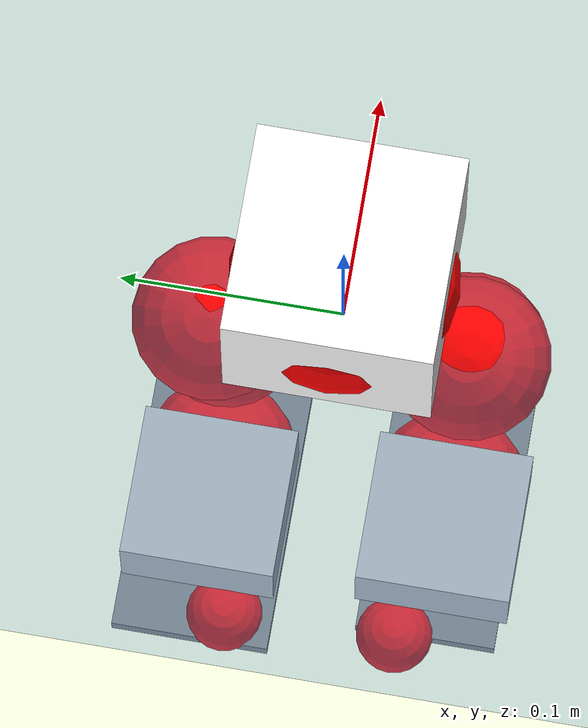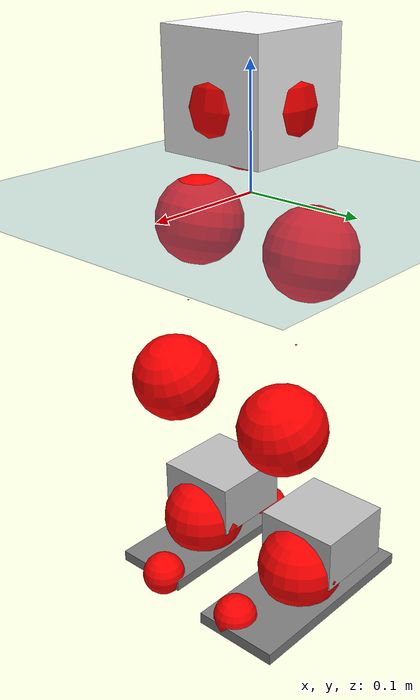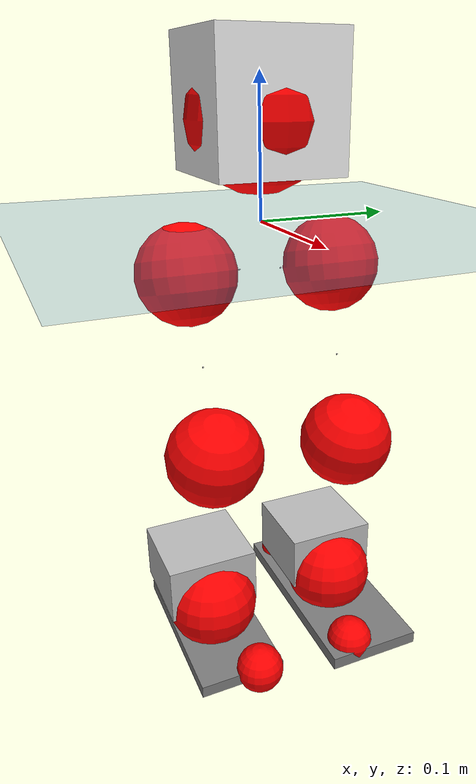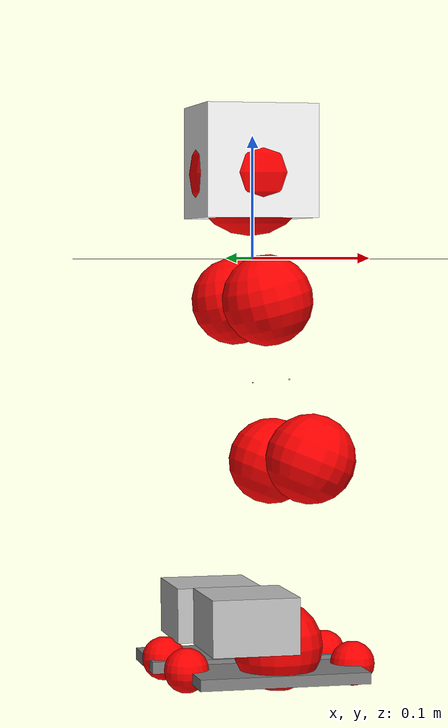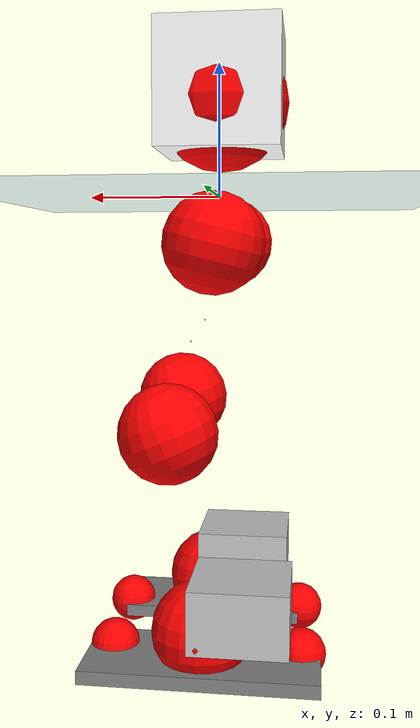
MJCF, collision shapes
<mujoco model="pi_12dof_release_v1">
  <compiler angle="radian" assetdir="assets" balanceinertia="true" inertiafromgeom="false"/>

  <option timestep="0.005" density="1.2" viscosity="2e-05"/>

  <size nkey="1"/>

  <visual>
    <quality shadowsize="8192"/>
    <map shadowclip="0.5"/>
  </visual>

  <default>
    <default class="/">
      <joint armature="0.01" damping="0.01" frictionloss="0.01"/>
      <geom contype="0" conaffinity="0" group="1" solref="-1000 -80"/>
      <site size="0.01 0.005 0.005" group="5"/>
      <general forcelimited="true" biastype="affine" gainprm="20" biasprm="0 -20 -0.5"/>
      <default class="foot">
        <geom size="0.0845 0.036 0.005" type="box" condim="6" group="4" priority="1" friction="0.9 0.2 0.2" solimp="0.015 1 0.005"/>
      </default>
      <default class="reward_collision_sphere">
        <geom group="5" rgba="1 0 0 1"/>
      </default>
    </default>
  </default>

  <asset>
    <texture type="skybox" colorspace="auto" name="//unnamed_texture_0" builtin="gradient" rgb1="0.95 0.95 0.95" rgb2="0.95 0.95 0.95" width="100" height="600"/>
    <texture type="2d" colorspace="auto" name="texplane" builtin="checker" rgb1="0.345 0.575 0.748" rgb2="0.345 0.575 0.748" markrgb="1 1 1" width="512" height="512"/>
    <material name="MatPlane" class="/" texture="texplane" texuniform="true" texrepeat="2 2" specular="0.9"/>
    <mesh name="baselink_1" class="/" file="baselink_1.STL"/>
    <mesh name="r_hip_pitch_link" class="/" file="r_hip_pitch_link.STL"/>
    <mesh name="r_hip_roll_link" class="/" file="r_hip_roll_link.STL"/>
    <mesh name="r_thigh_link" class="/" file="r_thigh_link.STL"/>
    <mesh name="r_calf_link" class="/" file="r_calf_link.STL"/>
    <mesh name="r_ankle_pitch_link" class="/" file="r_ankle_pitch_link.STL"/>
    <mesh name="r_ankle_roll_link" class="/" file="r_ankle_roll_link.STL"/>
    <mesh name="l_hip_pitch_link" class="/" file="l_hip_pitch_link.STL"/>
    <mesh name="l_hip_roll_link" class="/" file="l_hip_roll_link.STL"/>
    <mesh name="l_thigh_link" class="/" file="l_thigh_link.STL"/>
    <mesh name="l_calf_link" class="/" file="l_calf_link.STL"/>
    <mesh name="l_ankle_pitch_link" class="/" file="l_ankle_pitch_link.STL"/>
    <mesh name="l_ankle_roll_link" class="/" file="l_ankle_roll_link.STL"/>
  </asset>

  <worldbody>
    <geom name="floor" class="/" size="100 100 0.125" type="plane" group="0" material="MatPlane"/>
    <light name="toplight_shadow" class="/" pos="0 0 5" dir="0.0990148 0.0990148 -0.990148" type="directional" ambient="0.04 0.04 0.04" diffuse="0.55 0.55 0.55" specular="0.12 0.12 0.12"/>
    <light name="toplight_fill" class="/" pos="0 0 5" dir="0.0990148 0.0990148 -0.990148" type="directional" castshadow="false" ambient="0.04 0.04 0.04" diffuse="0.3 0.3 0.3" specular="0.08 0.08 0.08"/>
    <body name="trunk" pos="-0.0019892 -0.000693392 -0.000629677" quat="1 0.000233545 -0.000442511 -0.000572655">
      <inertial pos="0.00159125 -0.000120033 0.040237" quat="0.69065 0.00112571 0.00366856 0.723179" mass="1.68196" diaginertia="0.0119206 0.00191849 0.00413812"/>
      <joint name="//unnamed_joint_0" type="free"/>
      <geom name="//unnamed_geom_1" class="/" type="mesh" density="0" rgba="1 1 1 1" mesh="baselink_1"/>
      <geom name="//unnamed_geom_2" class="/" size="0.0460882 0.0460882 0.0460882" pos="0 0 0.0796172" type="box" rgba="1 1 1 1"/>
      <geom name="//unnamed_geom_3" class="reward_collision_sphere" size="0.050697" pos="0 0 0.0696651"/>
      <site name="imu" class="/" pos="0.00495602 -0.0128136 0.00239511" size="0.00921764"/>
      <camera name="track" class="/" pos="0 -1.46765 0" quat="0.707107 0.707107 0 0" mode="trackcom"/>
      <camera name="ego_camera" class="/" pos="0.0777187 0 0.179139" quat="-0.5 -0.5 0.5 0.5"/>
      <body name="r_hip_pitch_link" pos="0.000533825 -0.0160638 -0.0333106" quat="0.992121 0.00111123 -0.125281 0.000272716">
        <inertial pos="0.00017167 -0.0413616 0.000678729" quat="-0.0102872 0.705814 -0.033953 0.707509" mass="0.299178" diaginertia="0.000134083 2.14822e-05 8.45819e-05"/>
        <joint name="r_hip_pitch_joint" class="/" pos="0 0 0" axis="-0.00565841 -0.999984 0.000561045" range="-1.73758 1.24847" armature="0.00882808" damping="0.00473429" frictionloss="0.00878391"/>
        <geom name="//unnamed_geom_4" class="/" type="mesh" density="0" rgba="0.75294 0.75294 0.75294 1" mesh="r_hip_pitch_link"/>
        <geom name="//unnamed_geom_5" class="/" size="0.000460882 0.000460882 0.000460882" type="box" rgba="0.75294 0.75294 0.75294 1"/>
        <body name="r_hip_roll_link" pos="0.0002286 -0.0403911 0.000270864" quat="1 0.000160149 -6.20294e-05 -0.000124793">
          <inertial pos="-0.00114001 -0.00288679 -0.0634324" quat="0.705888 -0.0754431 -0.0852076 0.699121" mass="0.309686" diaginertia="0.000397121 5.88495e-05 0.000124548"/>
          <joint name="r_hip_roll_joint" class="/" pos="0 0 0" axis="-0.999949 0.00945085 -0.00353858" range="-0.128912 0.551947" armature="0.00890239" damping="0.0122446" frictionloss="0.00954317"/>
          <geom name="//unnamed_geom_6" class="/" type="mesh" density="0" rgba="0.75294 0.75294 0.75294 1" mesh="r_hip_roll_link"/>
          <geom name="//unnamed_geom_7" class="/" size="0.000460882 0.000460882 0.000460882" type="box" rgba="0.75294 0.75294 0.75294 1"/>
          <geom name="//unnamed_geom_8" class="reward_collision_sphere" size="0.0368706"/>
          <body name="r_thigh_link" pos="0.002223 0.00307142 -0.0666482" quat="1 2.85514e-05 -3.76739e-05 0.000344604">
            <inertial pos="0.00120745 -0.00045335 -0.0455544" quat="0.737044 0.675845 6.35448e-05 8.54067e-07" mass="0.0916584" diaginertia="0.000153461 2.05039e-05 5.67907e-05"/>
            <joint name="r_thigh_joint" class="/" pos="0 0 0" axis="0.00570046 -0.00884392 -0.999945" stiffness="0.00852429" range="-0.319711 0.589415" armature="0.00872873" damping="0" frictionloss="0.00804292"/>
            <geom name="//unnamed_geom_9" class="/" type="mesh" density="0" rgba="0.75294 0.75294 0.75294 1" mesh="r_thigh_link"/>
            <geom name="//unnamed_geom_10" class="/" size="0.000460882 0.000460882 0.000460882" type="box" rgba="0.75294 0.75294 0.75294 1"/>
            <body name="r_calf_link" pos="0.0013701 6.50477e-05 -0.0673406" quat="0.947651 7.41329e-07 0.319309 -7.10496e-07">
              <inertial pos="0.00055513 -0.00233838 -0.0696408" quat="0.999947 -0.00500515 0.00402784 -0.00808918" mass="0.660258" diaginertia="0.00430838 0.000769124 0.000174011"/>
              <joint name="r_calf_joint" class="/" pos="0 0 0" axis="-0.00221168 -0.999966 -0.00794339" range="-1.59668 0.645858" armature="0.00807522" damping="0.0063509" frictionloss="0.00900898"/>
              <geom name="//unnamed_geom_11" class="/" type="mesh" density="0" rgba="0.75294 0.75294 0.75294 1" mesh="r_calf_link"/>
              <geom name="//unnamed_geom_12" class="/" size="0.000460882 0.000460882 0.000460882" type="box" rgba="0.75294 0.75294 0.75294 1"/>
              <geom name="//unnamed_geom_13" class="reward_collision_sphere" size="0.0368706"/>
              <body name="r_ankle_pitch_link" pos="0.00143215 0.00107423 -0.141167" quat="0.980108 0.000117304 -0.198465 0.000252833">
                <inertial pos="0.00514879 0.00262596 -0.00289771" quat="0.00184592 0.712442 0.00778041 0.701685" mass="0.141006" diaginertia="0.000376352 4.88584e-05 0.000121094"/>
                <joint name="r_ankle_pitch_joint" class="/" pos="0 0 0" axis="0.00282689 -0.999996 0.000593181" range="-1.30403 0.553674" armature="0.00917253" damping="0.00698024" frictionloss="0.0104233"/>
                <geom name="//unnamed_geom_14" class="/" type="mesh" density="0" rgba="0.75294 0.75294 0.75294 1" mesh="r_ankle_pitch_link"/>
                <geom name="//unnamed_geom_15" class="/" size="0.0359488 0.0368706 0.0230441" type="box" rgba="0.75294 0.75294 0.75294 1"/>
                <body name="r_ankle_roll_link" pos="0.0780367 0.000939841 -0.00125964" quat="1 5.78243e-06 -0.000282262 -0.000106593">
                  <inertial pos="-0.0253312 0.000767637 -0.0119432" quat="0.561137 0.426768 0.434089 0.560857" mass="0.382278" diaginertia="0.00130847 0.000219506 0.000258918"/>
                  <joint name="r_ankle_roll_joint" class="/" pos="0 0 0" axis="-0.999899 0.0108718 0.00915817" range="-0.117445 0.098559" armature="0.00795604" damping="0.0203576" frictionloss="0.00876877"/>
                  <geom name="//unnamed_geom_16" class="/" type="mesh" density="0" rgba="0.75294 0.75294 0.75294 1" mesh="r_ankle_roll_link"/>
                  <geom name="//unnamed_geom_17" class="/" type="mesh" rgba="0.75294 0.75294 0.75294 1" mesh="r_ankle_roll_link"/>
                  <geom name="right_foot" class="foot" size="0.0703855 0.0337212 0.00471743" pos="-0.0528487 0 -0.0437895"/>
                  <geom name="//unnamed_geom_19" class="reward_collision_sphere" size="0.0368706" pos="-0.0518125 0 -0.0199043"/>
                  <geom name="//unnamed_geom_20" class="reward_collision_sphere" size="0.0184353" pos="0.0155437 0.0146765 -0.0398086"/>
                  <geom name="//unnamed_geom_21" class="reward_collision_sphere" size="0.0184353" pos="-0.12435 0.0146765 -0.0398086"/>
                  <site name="right_foot" class="foot" pos="-0.0528487 0 -0.0437895" size="0.00921764"/>
                </body>
              </body>
            </body>
          </body>
        </body>
      </body>
      <body name="l_hip_pitch_link" pos="0.000621083 0.0167274 -0.0352832" quat="0.992194 -0.000134662 -0.124707 -8.51407e-05">
        <inertial pos="0.00063826 0.0397483 -0.00284177" quat="-0.0390184 0.707156 0.0314241 0.705281" mass="0.317231" diaginertia="0.000159235 2.19995e-05 9.90418e-05"/>
        <joint name="l_hip_pitch_joint" class="/" pos="0 0 0" axis="0.00139625 0.999998 0.00158091" range="-1.2037 1.75515" armature="0.0102834" damping="0.00917221" frictionloss="0.00957549"/>
        <geom name="//unnamed_geom_22" class="/" type="mesh" density="0" rgba="0.75294 0.75294 0.75294 1" mesh="l_hip_pitch_link"/>
        <geom name="//unnamed_geom_23" class="/" size="0.000460882 0.000460882 0.000460882" type="box" rgba="0.75294 0.75294 0.75294 1"/>
        <body name="l_hip_roll_link" pos="-0.000596427 0.0422138 -0.000458318" quat="1 -4.08152e-05 -0.000257703 0.000380103">
          <inertial pos="-0.00411377 -0.00143978 -0.0632119" quat="0.703338 -0.0866055 -0.07946 0.701071" mass="0.307761" diaginertia="0.0003844 5.94182e-05 0.000121148"/>
          <joint name="l_hip_roll_joint" class="/" pos="0 0 0" axis="-0.999998 0.001101 -0.00175593" range="-0.554297 0.163539" armature="0.00889163" damping="0" frictionloss="0.00920209"/>
          <geom name="//unnamed_geom_24" class="/" type="mesh" density="0" rgba="0.75294 0.75294 0.75294 1" mesh="l_hip_roll_link"/>
          <geom name="//unnamed_geom_25" class="/" size="0.000460882 0.000460882 0.000460882" type="box" rgba="0.75294 0.75294 0.75294 1"/>
          <geom name="//unnamed_geom_26" class="reward_collision_sphere" size="0.0368706"/>
          <body name="l_thigh_link" pos="-0.00194152 -0.000328412 -0.0712754" quat="1 9.55458e-05 -5.47436e-05 -0.000107839">
            <inertial pos="0.00132742 -0.00292202 -0.0455605" quat="0.666976 0.745069 -0.00369481 0.00146119" mass="0.0855233" diaginertia="0.000149047 2.00128e-05 5.67145e-05"/>
            <joint name="l_thigh_joint" class="/" pos="0 0 0" axis="0.000877968 -0.000922078 -0.999999" range="-0.602782 0.281807" armature="0.00900649" damping="0.00118531" frictionloss="0.00944377"/>
            <geom name="//unnamed_geom_27" class="/" type="mesh" density="0" rgba="0.75294 0.75294 0.75294 1" mesh="l_thigh_link"/>
            <geom name="//unnamed_geom_28" class="/" size="0.000460882 0.000460882 0.000460882" type="box" rgba="0.75294 0.75294 0.75294 1"/>
            <body name="l_calf_link" pos="-0.000607069 0.00126326 -0.0693523" quat="0.947633 0.00016879 0.319362 -0.000238013">
              <inertial pos="0.000247405 0.00472198 -0.0719546" quat="0.999983 0.00280773 -0.000469992 0.00508027" mass="0.616996" diaginertia="0.00411393 0.000729176 0.00016493"/>
              <joint name="l_calf_joint" class="/" pos="0 0 0" axis="-0.00186464 0.999998 -0.00103766" stiffness="0.00127557" range="-0.597327 1.70661" armature="0.00924019" damping="0.00852219" frictionloss="0.00892471"/>
              <geom name="//unnamed_geom_29" class="/" type="mesh" density="0" rgba="0.75294 0.75294 0.75294 1" mesh="l_calf_link"/>
              <geom name="//unnamed_geom_30" class="/" size="0.000460882 0.000460882 0.000460882" type="box" rgba="0.75294 0.75294 0.75294 1"/>
              <geom name="//unnamed_geom_31" class="reward_collision_sphere" size="0.0368706"/>
              <body name="l_ankle_pitch_link" pos="-0.000549431 0.000791723 -0.136839" quat="0.980056 3.23462e-05 -0.198722 0.000112967">
                <inertial pos="0.00352651 0.00121658 -0.000168092" quat="-0.00194049 0.707467 0.00144161 0.706743" mass="0.129398" diaginertia="0.000357327 4.58023e-05 0.000116791"/>
                <joint name="l_ankle_pitch_joint" class="/" pos="0 0 0" axis="0.00118739 0.999999 3.6131e-05" range="-0.559114 1.31725" armature="0.00819365" damping="0.0129239" frictionloss="0.00872374"/>
                <geom name="//unnamed_geom_32" class="/" type="mesh" density="0" rgba="0.75294 0.75294 0.75294 1" mesh="l_ankle_pitch_link"/>
                <geom name="//unnamed_geom_33" class="/" size="0.0359488 0.0368706 0.0230441" type="box" rgba="0.75294 0.75294 0.75294 1"/>
                <body name="l_ankle_roll_link" pos="0.0808183 0.000300448 0.00125517" quat="1 0.000238445 -0.000323736 -0.000397448">
                  <inertial pos="-0.0257763 -0.00063013 -0.0140712" quat="0.562448 0.428303 0.435126 0.557562" mass="0.386519" diaginertia="0.00134045 0.000214597 0.000271731"/>
                  <joint name="l_ankle_roll_joint" class="/" pos="0 0 0" axis="-0.999989 0.00425492 0.00183973" range="-0.166519 0.152233" armature="0.0102368" damping="0.00431501" frictionloss="0.00925497"/>
                  <geom name="//unnamed_geom_34" class="/" type="mesh" density="0" rgba="0.75294 0.75294 0.75294 1" mesh="l_ankle_roll_link"/>
                  <geom name="//unnamed_geom_35" class="/" type="mesh" rgba="0.75294 0.75294 0.75294 1" mesh="l_ankle_roll_link"/>
                  <geom name="left_foot" class="foot" size="0.0858686 0.0378725 0.00502812" pos="-0.0528487 0 -0.0437895"/>
                  <geom name="//unnamed_geom_37" class="reward_collision_sphere" size="0.0368706" pos="-0.0518125 0 -0.0199043"/>
                  <geom name="//unnamed_geom_38" class="reward_collision_sphere" size="0.0184353" pos="0.0155437 -0.0146765 -0.0398086"/>
                  <geom name="//unnamed_geom_39" class="reward_collision_sphere" size="0.0184353" pos="-0.12435 -0.0146765 -0.0398086"/>
                  <site name="left_foot" class="foot" pos="-0.0528487 0 -0.0437895" size="0.00921764"/>
                </body>
              </body>
            </body>
          </body>
        </body>
      </body>
    </body>
  </worldbody>

  <contact>
    <pair class="/" geom1="floor" geom2="right_foot" name="//unnamed_contact_1"/>
    <pair class="/" geom1="floor" geom2="left_foot" name="//unnamed_contact_0"/>
  </contact>

  <actuator>
    <general name="r_hip_pitch_joint" class="/" joint="r_hip_pitch_joint" forcerange="-19.3549 19.3549" gainprm="18.4373" biasprm="0 -18.4373 -0.464156"/>
    <general name="r_hip_roll_joint" class="/" joint="r_hip_roll_joint" forcerange="-17.4529 17.4529" gainprm="18.4373" biasprm="0 -18.4373 -0.464156"/>
    <general name="r_thigh_joint" class="/" joint="r_thigh_joint" forcerange="-19.9877 19.9877" gainprm="18.4373" biasprm="0 -18.4373 -0.464156"/>
    <general name="r_calf_joint" class="/" joint="r_calf_joint" forcerange="-19.8366 19.8366" gainprm="18.4373" biasprm="0 -18.4373 -0.464156"/>
    <general name="r_ankle_pitch_joint" class="/" joint="r_ankle_pitch_joint" forcerange="-19.002 19.002" gainprm="18.4373" biasprm="0 -18.4373 -0.464156"/>
    <general name="r_ankle_roll_joint" class="/" joint="r_ankle_roll_joint" forcerange="-19.9705 19.9705" gainprm="18.4373" biasprm="0 -18.4373 -0.464156"/>
    <general name="l_hip_pitch_joint" class="/" joint="l_hip_pitch_joint" forcerange="-18.5604 18.5604" gainprm="18.4373" biasprm="0 -18.4373 -0.464156"/>
    <general name="l_hip_roll_joint" class="/" joint="l_hip_roll_joint" forcerange="-21.24 21.24" gainprm="18.4373" biasprm="0 -18.4373 -0.464156"/>
    <general name="l_thigh_joint" class="/" joint="l_thigh_joint" forcerange="-17.3988 17.3988" gainprm="18.4373" biasprm="0 -18.4373 -0.464156"/>
    <general name="l_calf_joint" class="/" joint="l_calf_joint" forcerange="-19.2832 19.2832" gainprm="18.4373" biasprm="0 -18.4373 -0.464156"/>
    <general name="l_ankle_pitch_joint" class="/" joint="l_ankle_pitch_joint" forcerange="-20.2955 20.2955" gainprm="18.4373" biasprm="0 -18.4373 -0.464156"/>
    <general name="l_ankle_roll_joint" class="/" joint="l_ankle_roll_joint" forcerange="-21.1624 21.1624" gainprm="18.4373" biasprm="0 -18.4373 -0.464156"/>
  </actuator>

  <sensor>
    <gyro site="imu" name="imu_angular_velocity"/>
    <velocimeter site="imu" name="imu_linear_velocity"/>
    <framelinvel objtype="site" objname="left_foot" name="left_foot_global_linear_velocity"/>
    <framelinvel objtype="site" objname="right_foot" name="right_foot_global_linear_velocity"/>
  </sensor>

  <keyframe>
    <key name="home" qpos="0 0 0.291 1 0 0 0 0.4 0 0 -0.8 0.4 0 -0.4 0 0 0.8 -0.4 0"/>
  </keyframe>
</mujoco>
